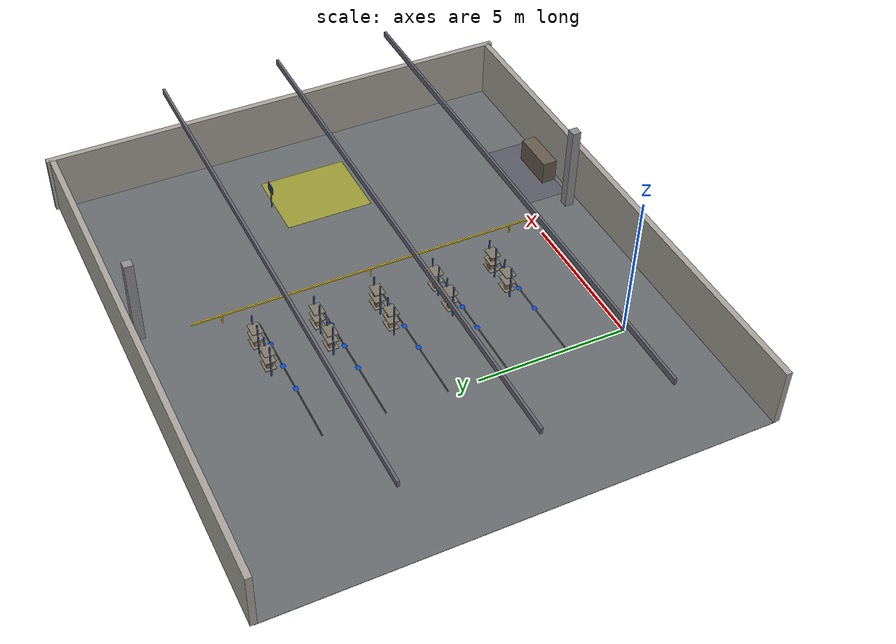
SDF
<sdf version="1.6">
 <world name="atlas_warehouse">
  <model name="floor_main">
   <static>true</static>
   <pose>4 6 -0.01 0 0 0</pose>
   <link name="link">
    <collision name="c"><geometry><box><size>18 16 0.02</size></box></geometry></collision>
    <visual name="v">
     <geometry><box><size>18 16 0.02</size></box></geometry>
     <material>
      <ambient>0.35 0.37 0.38 1</ambient>
      <diffuse>0.4 0.42 0.43 1</diffuse>
      <specular>0.15 0.15 0.15 1</specular>
     </material>
    </visual>
   </link>
  </model>
  <model name="aisle_1">
   <static>true</static>
   <pose>2.5 2 0.001 0 0 0</pose>
   <link name="link">
    <collision name="c"><geometry><box><size>5 0.05 0.002</size></box></geometry></collision>
    <visual name="v">
     <geometry><box><size>5 0.05 0.002</size></box></geometry>
     <material><ambient>0.02 0.02 0.02 1</ambient><diffuse>0.03 0.03 0.03 1</diffuse></material>
    </visual>
   </link>
  </model>
  <model name="aisle_2">
   <static>true</static>
   <pose>2.5 4 0.001 0 0 0</pose>
   <link name="link">
    <collision name="c"><geometry><box><size>5 0.05 0.002</size></box></geometry></collision>
    <visual name="v">
     <geometry><box><size>5 0.05 0.002</size></box></geometry>
     <material><ambient>0.02 0.02 0.02 1</ambient><diffuse>0.03 0.03 0.03 1</diffuse></material>
    </visual>
   </link>
  </model>
  <model name="aisle_3">
   <static>true</static>
   <pose>2.5 6 0.001 0 0 0</pose>
   <link name="link">
    <collision name="c"><geometry><box><size>5 0.05 0.002</size></box></geometry></collision>
    <visual name="v">
     <geometry><box><size>5 0.05 0.002</size></box></geometry>
     <material><ambient>0.02 0.02 0.02 1</ambient><diffuse>0.03 0.03 0.03 1</diffuse></material>
    </visual>
   </link>
  </model>
  <model name="aisle_4">
   <static>true</static>
   <pose>2.5 8 0.001 0 0 0</pose>
   <link name="link">
    <collision name="c"><geometry><box><size>5 0.05 0.002</size></box></geometry></collision>
    <visual name="v">
     <geometry><box><size>5 0.05 0.002</size></box></geometry>
     <material><ambient>0.02 0.02 0.02 1</ambient><diffuse>0.03 0.03 0.03 1</diffuse></material>
    </visual>
   </link>
  </model>
  <model name="aisle_5">
   <static>true</static>
   <pose>2.5 10 0.001 0 0 0</pose>
   <link name="link">
    <collision name="c"><geometry><box><size>5 0.05 0.002</size></box></geometry></collision>
    <visual name="v">
     <geometry><box><size>5 0.05 0.002</size></box></geometry>
     <material><ambient>0.02 0.02 0.02 1</ambient><diffuse>0.03 0.03 0.03 1</diffuse></material>
    </visual>
   </link>
  </model>
  <model name="wall_north">
   <static>true</static>
   <pose>4 14 1.0 0 0 0</pose>
   <link name="link">
    <collision name="c"><geometry><box><size>18 0.2 2.0</size></box></geometry></collision>
    <visual name="v">
     <geometry><box><size>18 0.2 2.0</size></box></geometry>
     <material><ambient>0.6 0.58 0.55 1</ambient><diffuse>0.65 0.63 0.6 1</diffuse></material>
    </visual>
   </link>
  </model>
  <model name="wall_south">
   <static>true</static>
   <pose>4 -2 1.0 0 0 0</pose>
   <link name="link">
    <collision name="c"><geometry><box><size>18 0.2 2.0</size></box></geometry></collision>
    <visual name="v">
     <geometry><box><size>18 0.2 2.0</size></box></geometry>
     <material><ambient>0.6 0.58 0.55 1</ambient><diffuse>0.65 0.63 0.6 1</diffuse></material>
    </visual>
   </link>
  </model>
  <model name="wall_east">
   <static>true</static>
   <pose>13 6 1.0 0 0 0</pose>
   <link name="link">
    <collision name="c"><geometry><box><size>0.2 16.4 2.0</size></box></geometry></collision>
    <visual name="v">
     <geometry><box><size>0.2 16.4 2.0</size></box></geometry>
     <material><ambient>0.6 0.58 0.55 1</ambient><diffuse>0.65 0.63 0.6 1</diffuse></material>
    </visual>
   </link>
  </model>
  <model name="col_2">
   <static>true</static>
   <pose>6 -1.5 1.5 0 0 0</pose>
   <link name="link">
    <collision name="c"><geometry><box><size>0.3 0.3 3.0</size></box></geometry></collision>
    <visual name="v">
     <geometry><box><size>0.3 0.3 3.0</size></box></geometry>
     <material><ambient>0.5 0.5 0.52 1</ambient><diffuse>0.55 0.55 0.57 1</diffuse></material>
    </visual>
   </link>
  </model>
  <model name="col_4">
   <static>true</static>
   <pose>6 13.5 1.5 0 0 0</pose>
   <link name="link">
    <collision name="c"><geometry><box><size>0.3 0.3 3.0</size></box></geometry></collision>
    <visual name="v">
     <geometry><box><size>0.3 0.3 3.0</size></box></geometry>
     <material><ambient>0.5 0.5 0.52 1</ambient><diffuse>0.55 0.55 0.57 1</diffuse></material>
    </visual>
   </link>
  </model>
  <model name="truss_1">
   <static>true</static>
   <pose>4 2 3.5 0 0 0</pose>
   <link name="link">
    <visual name="v">
     <geometry><box><size>18 0.08 0.2</size></box></geometry>
     <material>
      <ambient>0.3 0.3 0.35 1</ambient>
      <diffuse>0.4 0.4 0.45 1</diffuse>
      <specular>0.2 0.2 0.2 1</specular>
     </material>
    </visual>
   </link>
  </model>
  <model name="truss_2">
   <static>true</static>
   <pose>4 6 3.5 0 0 0</pose>
   <link name="link">
    <visual name="v">
     <geometry><box><size>18 0.08 0.2</size></box></geometry>
     <material>
      <ambient>0.3 0.3 0.35 1</ambient>
      <diffuse>0.4 0.4 0.45 1</diffuse>
      <specular>0.2 0.2 0.2 1</specular>
     </material>
    </visual>
   </link>
  </model>
  <model name="truss_3">
   <static>true</static>
   <pose>4 10 3.5 0 0 0</pose>
   <link name="link">
    <visual name="v">
     <geometry><box><size>18 0.08 0.2</size></box></geometry>
     <material>
      <ambient>0.3 0.3 0.35 1</ambient>
      <diffuse>0.4 0.4 0.45 1</diffuse>
      <specular>0.2 0.2 0.2 1</specular>
     </material>
    </visual>
   </link>
  </model>
  <model name="rack_A1_S03">
   <static>true</static>
   <pose>3.0 2.45 0.0 0 0 0</pose>
   <link name="link">
    <visual name="uL">
     <pose>-0.22 0 0.6 0 0 0</pose>
     <geometry><box><size>0.04 0.04 1.2</size></box></geometry>
     <material>
      <ambient>0.2 0.35 0.6 1</ambient>
      <diffuse>0.25 0.4 0.7 1</diffuse>
      <specular>0.3 0.3 0.3 1</specular>
     </material>
    </visual>
    <visual name="uR">
     <pose>0.22 0 0.6 0 0 0</pose>
     <geometry><box><size>0.04 0.04 1.2</size></box></geometry>
     <material>
      <ambient>0.2 0.35 0.6 1</ambient>
      <diffuse>0.25 0.4 0.7 1</diffuse>
      <specular>0.3 0.3 0.3 1</specular>
     </material>
    </visual>
    <visual name="s1">
     <pose>0 0 0.25 0 0 0</pose>
     <geometry><box><size>0.48 0.35 0.02</size></box></geometry>
     <material><ambient>0.45 0.42 0.35 1</ambient><diffuse>0.5 0.47 0.4 1</diffuse></material>
    </visual>
    <visual name="s2">
     <pose>0 0 0.55 0 0 0</pose>
     <geometry><box><size>0.48 0.35 0.02</size></box></geometry>
     <material><ambient>0.45 0.42 0.35 1</ambient><diffuse>0.5 0.47 0.4 1</diffuse></material>
    </visual>
    <visual name="s3">
     <pose>0 0 0.85 0 0 0</pose>
     <geometry><box><size>0.48 0.35 0.02</size></box></geometry>
     <material><ambient>0.45 0.42 0.35 1</ambient><diffuse>0.5 0.47 0.4 1</diffuse></material>
    </visual>
    <visual name="b1">
     <pose>-0.05 0 0.33 0 0 0</pose>
     <geometry><box><size>0.18 0.2 0.14</size></box></geometry>
     <material><ambient>0.55 0.45 0.3 1</ambient><diffuse>0.6 0.5 0.35 1</diffuse></material>
    </visual>
    <visual name="lbl">
     <pose>0 0.18 0.5 0 0 0</pose>
     <geometry><box><size>0.12 0.005 0.06</size></box></geometry>
     <material><ambient>0.95 0.95 0.95 1</ambient><diffuse>1.0 1.0 1.0 1</diffuse></material>
    </visual>
    <collision name="c">
     <pose>0 0 0.6 0 0 0</pose>
     <geometry><box><size>0.5 0.36 1.2</size></box></geometry>
    </collision>
   </link>
  </model>
  <model name="rack_A1_S04">
   <static>true</static>
   <pose>4.0 2.45 0.0 0 0 0</pose>
   <link name="link">
    <visual name="uL">
     <pose>-0.22 0 0.6 0 0 0</pose>
     <geometry><box><size>0.04 0.04 1.2</size></box></geometry>
     <material>
      <ambient>0.2 0.35 0.6 1</ambient>
      <diffuse>0.25 0.4 0.7 1</diffuse>
      <specular>0.3 0.3 0.3 1</specular>
     </material>
    </visual>
    <visual name="uR">
     <pose>0.22 0 0.6 0 0 0</pose>
     <geometry><box><size>0.04 0.04 1.2</size></box></geometry>
     <material>
      <ambient>0.2 0.35 0.6 1</ambient>
      <diffuse>0.25 0.4 0.7 1</diffuse>
      <specular>0.3 0.3 0.3 1</specular>
     </material>
    </visual>
    <visual name="s1">
     <pose>0 0 0.25 0 0 0</pose>
     <geometry><box><size>0.48 0.35 0.02</size></box></geometry>
     <material><ambient>0.45 0.42 0.35 1</ambient><diffuse>0.5 0.47 0.4 1</diffuse></material>
    </visual>
    <visual name="s2">
     <pose>0 0 0.55 0 0 0</pose>
     <geometry><box><size>0.48 0.35 0.02</size></box></geometry>
     <material><ambient>0.45 0.42 0.35 1</ambient><diffuse>0.5 0.47 0.4 1</diffuse></material>
    </visual>
    <visual name="s3">
     <pose>0 0 0.85 0 0 0</pose>
     <geometry><box><size>0.48 0.35 0.02</size></box></geometry>
     <material><ambient>0.45 0.42 0.35 1</ambient><diffuse>0.5 0.47 0.4 1</diffuse></material>
    </visual>
    <visual name="b1">
     <pose>0.0 0 0.33 0 0 0</pose>
     <geometry><box><size>0.2 0.25 0.14</size></box></geometry>
     <material><ambient>0.45 0.35 0.2 1</ambient><diffuse>0.55 0.45 0.25 1</diffuse></material>
    </visual>
    <visual name="b2">
     <pose>0.0 0 0.63 0 0 0</pose>
     <geometry><box><size>0.15 0.15 0.12</size></box></geometry>
     <material><ambient>0.6 0.3 0.2 1</ambient><diffuse>0.7 0.35 0.25 1</diffuse></material>
    </visual>
    <visual name="lbl">
     <pose>0 0.18 0.5 0 0 0</pose>
     <geometry><box><size>0.12 0.005 0.06</size></box></geometry>
     <material><ambient>0.95 0.95 0.95 1</ambient><diffuse>1.0 1.0 1.0 1</diffuse></material>
    </visual>
    <collision name="c">
     <pose>0 0 0.6 0 0 0</pose>
     <geometry><box><size>0.5 0.36 1.2</size></box></geometry>
    </collision>
   </link>
  </model>
  <model name="rack_A2_S07">
   <static>true</static>
   <pose>3.0 4.45 0.0 0 0 0</pose>
   <link name="link">
    <visual name="uL">
     <pose>-0.22 0 0.6 0 0 0</pose>
     <geometry><box><size>0.04 0.04 1.2</size></box></geometry>
     <material>
      <ambient>0.2 0.35 0.6 1</ambient>
      <diffuse>0.25 0.4 0.7 1</diffuse>
      <specular>0.3 0.3 0.3 1</specular>
     </material>
    </visual>
    <visual name="uR">
     <pose>0.22 0 0.6 0 0 0</pose>
     <geometry><box><size>0.04 0.04 1.2</size></box></geometry>
     <material>
      <ambient>0.2 0.35 0.6 1</ambient>
      <diffuse>0.25 0.4 0.7 1</diffuse>
      <specular>0.3 0.3 0.3 1</specular>
     </material>
    </visual>
    <visual name="s1">
     <pose>0 0 0.25 0 0 0</pose>
     <geometry><box><size>0.48 0.35 0.02</size></box></geometry>
     <material><ambient>0.45 0.42 0.35 1</ambient><diffuse>0.5 0.47 0.4 1</diffuse></material>
    </visual>
    <visual name="s2">
     <pose>0 0 0.55 0 0 0</pose>
     <geometry><box><size>0.48 0.35 0.02</size></box></geometry>
     <material><ambient>0.45 0.42 0.35 1</ambient><diffuse>0.5 0.47 0.4 1</diffuse></material>
    </visual>
    <visual name="s3">
     <pose>0 0 0.85 0 0 0</pose>
     <geometry><box><size>0.48 0.35 0.02</size></box></geometry>
     <material><ambient>0.45 0.42 0.35 1</ambient><diffuse>0.5 0.47 0.4 1</diffuse></material>
    </visual>
    <visual name="b1">
     <pose>-0.05 0 0.33 0 0 0</pose>
     <geometry><box><size>0.16 0.2 0.14</size></box></geometry>
     <material><ambient>0.5 0.4 0.2 1</ambient><diffuse>0.6 0.45 0.25 1</diffuse></material>
    </visual>
    <visual name="b2">
     <pose>0.08 0 0.63 0 0 0</pose>
     <geometry><box><size>0.14 0.18 0.12</size></box></geometry>
     <material>
      <ambient>0.4 0.35000000000000003 0.15000000000000002 1</ambient>
      <diffuse>0.5 0.4 0.2 1</diffuse>
     </material>
    </visual>
    <visual name="lbl">
     <pose>0 0.18 0.5 0 0 0</pose>
     <geometry><box><size>0.12 0.005 0.06</size></box></geometry>
     <material><ambient>0.95 0.95 0.95 1</ambient><diffuse>1.0 1.0 1.0 1</diffuse></material>
    </visual>
    <collision name="c">
     <pose>0 0 0.6 0 0 0</pose>
     <geometry><box><size>0.5 0.36 1.2</size></box></geometry>
    </collision>
   </link>
  </model>
  <model name="rack_A2_S08">
   <static>true</static>
   <pose>4.0 4.45 0.0 0 0 0</pose>
   <link name="link">
    <visual name="uL">
     <pose>-0.22 0 0.6 0 0 0</pose>
     <geometry><box><size>0.04 0.04 1.2</size></box></geometry>
     <material>
      <ambient>0.2 0.35 0.6 1</ambient>
      <diffuse>0.25 0.4 0.7 1</diffuse>
      <specular>0.3 0.3 0.3 1</specular>
     </material>
    </visual>
    <visual name="uR">
     <pose>0.22 0 0.6 0 0 0</pose>
     <geometry><box><size>0.04 0.04 1.2</size></box></geometry>
     <material>
      <ambient>0.2 0.35 0.6 1</ambient>
      <diffuse>0.25 0.4 0.7 1</diffuse>
      <specular>0.3 0.3 0.3 1</specular>
     </material>
    </visual>
    <visual name="s1">
     <pose>0 0 0.25 0 0 0</pose>
     <geometry><box><size>0.48 0.35 0.02</size></box></geometry>
     <material><ambient>0.45 0.42 0.35 1</ambient><diffuse>0.5 0.47 0.4 1</diffuse></material>
    </visual>
    <visual name="s2">
     <pose>0 0 0.55 0 0 0</pose>
     <geometry><box><size>0.48 0.35 0.02</size></box></geometry>
     <material><ambient>0.45 0.42 0.35 1</ambient><diffuse>0.5 0.47 0.4 1</diffuse></material>
    </visual>
    <visual name="s3">
     <pose>0 0 0.85 0 0 0</pose>
     <geometry><box><size>0.48 0.35 0.02</size></box></geometry>
     <material><ambient>0.45 0.42 0.35 1</ambient><diffuse>0.5 0.47 0.4 1</diffuse></material>
    </visual>
    <visual name="b1">
     <pose>-0.05 0 0.33 0 0 0</pose>
     <geometry><box><size>0.16 0.2 0.14</size></box></geometry>
     <material><ambient>0.7 0.6 0.4 1</ambient><diffuse>0.7999999999999999 0.65 0.45 1</diffuse></material>
    </visual>
    <visual name="b2">
     <pose>0.08 0 0.63 0 0 0</pose>
     <geometry><box><size>0.14 0.18 0.12</size></box></geometry>
     <material>
      <ambient>0.6 0.5499999999999999 0.35000000000000003 1</ambient>
      <diffuse>0.7 0.6 0.4 1</diffuse>
     </material>
    </visual>
    <visual name="lbl">
     <pose>0 0.18 0.5 0 0 0</pose>
     <geometry><box><size>0.12 0.005 0.06</size></box></geometry>
     <material><ambient>0.95 0.95 0.95 1</ambient><diffuse>1.0 1.0 1.0 1</diffuse></material>
    </visual>
    <collision name="c">
     <pose>0 0 0.6 0 0 0</pose>
     <geometry><box><size>0.5 0.36 1.2</size></box></geometry>
    </collision>
   </link>
  </model>
  <model name="rack_A3_S11">
   <static>true</static>
   <pose>3.0 6.45 0.0 0 0 0</pose>
   <link name="link">
    <visual name="uL">
     <pose>-0.22 0 0.6 0 0 0</pose>
     <geometry><box><size>0.04 0.04 1.2</size></box></geometry>
     <material>
      <ambient>0.2 0.35 0.6 1</ambient>
      <diffuse>0.25 0.4 0.7 1</diffuse>
      <specular>0.3 0.3 0.3 1</specular>
     </material>
    </visual>
    <visual name="uR">
     <pose>0.22 0 0.6 0 0 0</pose>
     <geometry><box><size>0.04 0.04 1.2</size></box></geometry>
     <material>
      <ambient>0.2 0.35 0.6 1</ambient>
      <diffuse>0.25 0.4 0.7 1</diffuse>
      <specular>0.3 0.3 0.3 1</specular>
     </material>
    </visual>
    <visual name="s1">
     <pose>0 0 0.25 0 0 0</pose>
     <geometry><box><size>0.48 0.35 0.02</size></box></geometry>
     <material><ambient>0.45 0.42 0.35 1</ambient><diffuse>0.5 0.47 0.4 1</diffuse></material>
    </visual>
    <visual name="s2">
     <pose>0 0 0.55 0 0 0</pose>
     <geometry><box><size>0.48 0.35 0.02</size></box></geometry>
     <material><ambient>0.45 0.42 0.35 1</ambient><diffuse>0.5 0.47 0.4 1</diffuse></material>
    </visual>
    <visual name="s3">
     <pose>0 0 0.85 0 0 0</pose>
     <geometry><box><size>0.48 0.35 0.02</size></box></geometry>
     <material><ambient>0.45 0.42 0.35 1</ambient><diffuse>0.5 0.47 0.4 1</diffuse></material>
    </visual>
    <visual name="b1">
     <pose>-0.05 0 0.33 0 0 0</pose>
     <geometry><box><size>0.16 0.2 0.14</size></box></geometry>
     <material><ambient>0.6 0.5 0.3 1</ambient><diffuse>0.7 0.55 0.35 1</diffuse></material>
    </visual>
    <visual name="b2">
     <pose>0.08 0 0.63 0 0 0</pose>
     <geometry><box><size>0.14 0.18 0.12</size></box></geometry>
     <material><ambient>0.5 0.45 0.25 1</ambient><diffuse>0.6 0.5 0.3 1</diffuse></material>
    </visual>
    <visual name="lbl">
     <pose>0 0.18 0.5 0 0 0</pose>
     <geometry><box><size>0.12 0.005 0.06</size></box></geometry>
     <material><ambient>0.95 0.95 0.95 1</ambient><diffuse>1.0 1.0 1.0 1</diffuse></material>
    </visual>
    <collision name="c">
     <pose>0 0 0.6 0 0 0</pose>
     <geometry><box><size>0.5 0.36 1.2</size></box></geometry>
    </collision>
   </link>
  </model>
  <model name="rack_A3_S12">
   <static>true</static>
   <pose>4.0 6.45 0.0 0 0 0</pose>
   <link name="link">
    <visual name="uL">
     <pose>-0.22 0 0.6 0 0 0</pose>
     <geometry><box><size>0.04 0.04 1.2</size></box></geometry>
     <material>
      <ambient>0.2 0.35 0.6 1</ambient>
      <diffuse>0.25 0.4 0.7 1</diffuse>
      <specular>0.3 0.3 0.3 1</specular>
     </material>
    </visual>
    <visual name="uR">
     <pose>0.22 0 0.6 0 0 0</pose>
     <geometry><box><size>0.04 0.04 1.2</size></box></geometry>
     <material>
      <ambient>0.2 0.35 0.6 1</ambient>
      <diffuse>0.25 0.4 0.7 1</diffuse>
      <specular>0.3 0.3 0.3 1</specular>
     </material>
    </visual>
    <visual name="s1">
     <pose>0 0 0.25 0 0 0</pose>
     <geometry><box><size>0.48 0.35 0.02</size></box></geometry>
     <material><ambient>0.45 0.42 0.35 1</ambient><diffuse>0.5 0.47 0.4 1</diffuse></material>
    </visual>
    <visual name="s2">
     <pose>0 0 0.55 0 0 0</pose>
     <geometry><box><size>0.48 0.35 0.02</size></box></geometry>
     <material><ambient>0.45 0.42 0.35 1</ambient><diffuse>0.5 0.47 0.4 1</diffuse></material>
    </visual>
    <visual name="s3">
     <pose>0 0 0.85 0 0 0</pose>
     <geometry><box><size>0.48 0.35 0.02</size></box></geometry>
     <material><ambient>0.45 0.42 0.35 1</ambient><diffuse>0.5 0.47 0.4 1</diffuse></material>
    </visual>
    <visual name="b1">
     <pose>-0.05 0 0.33 0 0 0</pose>
     <geometry><box><size>0.16 0.2 0.14</size></box></geometry>
     <material><ambient>0.5 0.4 0.2 1</ambient><diffuse>0.6 0.45 0.25 1</diffuse></material>
    </visual>
    <visual name="b2">
     <pose>0.08 0 0.63 0 0 0</pose>
     <geometry><box><size>0.14 0.18 0.12</size></box></geometry>
     <material>
      <ambient>0.4 0.35000000000000003 0.15000000000000002 1</ambient>
      <diffuse>0.5 0.4 0.2 1</diffuse>
     </material>
    </visual>
    <visual name="lbl">
     <pose>0 0.18 0.5 0 0 0</pose>
     <geometry><box><size>0.12 0.005 0.06</size></box></geometry>
     <material><ambient>0.95 0.95 0.95 1</ambient><diffuse>1.0 1.0 1.0 1</diffuse></material>
    </visual>
    <collision name="c">
     <pose>0 0 0.6 0 0 0</pose>
     <geometry><box><size>0.5 0.36 1.2</size></box></geometry>
    </collision>
   </link>
  </model>
  <model name="rack_A4_S15">
   <static>true</static>
   <pose>3.0 8.45 0.0 0 0 0</pose>
   <link name="link">
    <visual name="uL">
     <pose>-0.22 0 0.6 0 0 0</pose>
     <geometry><box><size>0.04 0.04 1.2</size></box></geometry>
     <material>
      <ambient>0.2 0.35 0.6 1</ambient>
      <diffuse>0.25 0.4 0.7 1</diffuse>
      <specular>0.3 0.3 0.3 1</specular>
     </material>
    </visual>
    <visual name="uR">
     <pose>0.22 0 0.6 0 0 0</pose>
     <geometry><box><size>0.04 0.04 1.2</size></box></geometry>
     <material>
      <ambient>0.2 0.35 0.6 1</ambient>
      <diffuse>0.25 0.4 0.7 1</diffuse>
      <specular>0.3 0.3 0.3 1</specular>
     </material>
    </visual>
    <visual name="s1">
     <pose>0 0 0.25 0 0 0</pose>
     <geometry><box><size>0.48 0.35 0.02</size></box></geometry>
     <material><ambient>0.45 0.42 0.35 1</ambient><diffuse>0.5 0.47 0.4 1</diffuse></material>
    </visual>
    <visual name="s2">
     <pose>0 0 0.55 0 0 0</pose>
     <geometry><box><size>0.48 0.35 0.02</size></box></geometry>
     <material><ambient>0.45 0.42 0.35 1</ambient><diffuse>0.5 0.47 0.4 1</diffuse></material>
    </visual>
    <visual name="s3">
     <pose>0 0 0.85 0 0 0</pose>
     <geometry><box><size>0.48 0.35 0.02</size></box></geometry>
     <material><ambient>0.45 0.42 0.35 1</ambient><diffuse>0.5 0.47 0.4 1</diffuse></material>
    </visual>
    <visual name="b1">
     <pose>-0.05 0 0.33 0 0 0</pose>
     <geometry><box><size>0.16 0.2 0.14</size></box></geometry>
     <material><ambient>0.55 0.45 0.3 1</ambient><diffuse>0.65 0.5 0.35 1</diffuse></material>
    </visual>
    <visual name="b2">
     <pose>0.08 0 0.63 0 0 0</pose>
     <geometry><box><size>0.14 0.18 0.12</size></box></geometry>
     <material><ambient>0.45000000000000007 0.4 0.25 1</ambient><diffuse>0.55 0.45 0.3 1</diffuse></material>
    </visual>
    <visual name="lbl">
     <pose>0 0.18 0.5 0 0 0</pose>
     <geometry><box><size>0.12 0.005 0.06</size></box></geometry>
     <material><ambient>0.95 0.95 0.95 1</ambient><diffuse>1.0 1.0 1.0 1</diffuse></material>
    </visual>
    <collision name="c">
     <pose>0 0 0.6 0 0 0</pose>
     <geometry><box><size>0.5 0.36 1.2</size></box></geometry>
    </collision>
   </link>
  </model>
  <model name="rack_A4_S16">
   <static>true</static>
   <pose>4.0 8.45 0.0 0 0 0</pose>
   <link name="link">
    <visual name="uL">
     <pose>-0.22 0 0.6 0 0 0</pose>
     <geometry><box><size>0.04 0.04 1.2</size></box></geometry>
     <material>
      <ambient>0.2 0.35 0.6 1</ambient>
      <diffuse>0.25 0.4 0.7 1</diffuse>
      <specular>0.3 0.3 0.3 1</specular>
     </material>
    </visual>
    <visual name="uR">
     <pose>0.22 0 0.6 0 0 0</pose>
     <geometry><box><size>0.04 0.04 1.2</size></box></geometry>
     <material>
      <ambient>0.2 0.35 0.6 1</ambient>
      <diffuse>0.25 0.4 0.7 1</diffuse>
      <specular>0.3 0.3 0.3 1</specular>
     </material>
    </visual>
    <visual name="s1">
     <pose>0 0 0.25 0 0 0</pose>
     <geometry><box><size>0.48 0.35 0.02</size></box></geometry>
     <material><ambient>0.45 0.42 0.35 1</ambient><diffuse>0.5 0.47 0.4 1</diffuse></material>
    </visual>
    <visual name="s2">
     <pose>0 0 0.55 0 0 0</pose>
     <geometry><box><size>0.48 0.35 0.02</size></box></geometry>
     <material><ambient>0.45 0.42 0.35 1</ambient><diffuse>0.5 0.47 0.4 1</diffuse></material>
    </visual>
    <visual name="s3">
     <pose>0 0 0.85 0 0 0</pose>
     <geometry><box><size>0.48 0.35 0.02</size></box></geometry>
     <material><ambient>0.45 0.42 0.35 1</ambient><diffuse>0.5 0.47 0.4 1</diffuse></material>
    </visual>
    <visual name="b1">
     <pose>-0.05 0 0.33 0 0 0</pose>
     <geometry><box><size>0.16 0.2 0.14</size></box></geometry>
     <material><ambient>0.6 0.5 0.3 1</ambient><diffuse>0.7 0.55 0.35 1</diffuse></material>
    </visual>
    <visual name="b2">
     <pose>0.08 0 0.63 0 0 0</pose>
     <geometry><box><size>0.14 0.18 0.12</size></box></geometry>
     <material><ambient>0.5 0.45 0.25 1</ambient><diffuse>0.6 0.5 0.3 1</diffuse></material>
    </visual>
    <visual name="lbl">
     <pose>0 0.18 0.5 0 0 0</pose>
     <geometry><box><size>0.12 0.005 0.06</size></box></geometry>
     <material><ambient>0.95 0.95 0.95 1</ambient><diffuse>1.0 1.0 1.0 1</diffuse></material>
    </visual>
    <collision name="c">
     <pose>0 0 0.6 0 0 0</pose>
     <geometry><box><size>0.5 0.36 1.2</size></box></geometry>
    </collision>
   </link>
  </model>
  <model name="rack_A5_S19">
   <static>true</static>
   <pose>3.0 10.45 0.0 0 0 0</pose>
   <link name="link">
    <visual name="uL">
     <pose>-0.22 0 0.6 0 0 0</pose>
     <geometry><box><size>0.04 0.04 1.2</size></box></geometry>
     <material>
      <ambient>0.2 0.35 0.6 1</ambient>
      <diffuse>0.25 0.4 0.7 1</diffuse>
      <specular>0.3 0.3 0.3 1</specular>
     </material>
    </visual>
    <visual name="uR">
     <pose>0.22 0 0.6 0 0 0</pose>
     <geometry><box><size>0.04 0.04 1.2</size></box></geometry>
     <material>
      <ambient>0.2 0.35 0.6 1</ambient>
      <diffuse>0.25 0.4 0.7 1</diffuse>
      <specular>0.3 0.3 0.3 1</specular>
     </material>
    </visual>
    <visual name="s1">
     <pose>0 0 0.25 0 0 0</pose>
     <geometry><box><size>0.48 0.35 0.02</size></box></geometry>
     <material><ambient>0.45 0.42 0.35 1</ambient><diffuse>0.5 0.47 0.4 1</diffuse></material>
    </visual>
    <visual name="s2">
     <pose>0 0 0.55 0 0 0</pose>
     <geometry><box><size>0.48 0.35 0.02</size></box></geometry>
     <material><ambient>0.45 0.42 0.35 1</ambient><diffuse>0.5 0.47 0.4 1</diffuse></material>
    </visual>
    <visual name="s3">
     <pose>0 0 0.85 0 0 0</pose>
     <geometry><box><size>0.48 0.35 0.02</size></box></geometry>
     <material><ambient>0.45 0.42 0.35 1</ambient><diffuse>0.5 0.47 0.4 1</diffuse></material>
    </visual>
    <visual name="b1">
     <pose>-0.05 0 0.33 0 0 0</pose>
     <geometry><box><size>0.16 0.2 0.14</size></box></geometry>
     <material><ambient>0.45 0.35 0.2 1</ambient><diffuse>0.55 0.39999999999999997 0.25 1</diffuse></material>
    </visual>
    <visual name="b2">
     <pose>0.08 0 0.63 0 0 0</pose>
     <geometry><box><size>0.14 0.18 0.12</size></box></geometry>
     <material><ambient>0.35 0.3 0.15000000000000002 1</ambient><diffuse>0.45 0.35 0.2 1</diffuse></material>
    </visual>
    <visual name="lbl">
     <pose>0 0.18 0.5 0 0 0</pose>
     <geometry><box><size>0.12 0.005 0.06</size></box></geometry>
     <material><ambient>0.95 0.95 0.95 1</ambient><diffuse>1.0 1.0 1.0 1</diffuse></material>
    </visual>
    <collision name="c">
     <pose>0 0 0.6 0 0 0</pose>
     <geometry><box><size>0.5 0.36 1.2</size></box></geometry>
    </collision>
   </link>
  </model>
  <model name="rack_A5_S20">
   <static>true</static>
   <pose>4.0 10.45 0.0 0 0 0</pose>
   <link name="link">
    <visual name="uL">
     <pose>-0.22 0 0.6 0 0 0</pose>
     <geometry><box><size>0.04 0.04 1.2</size></box></geometry>
     <material>
      <ambient>0.2 0.35 0.6 1</ambient>
      <diffuse>0.25 0.4 0.7 1</diffuse>
      <specular>0.3 0.3 0.3 1</specular>
     </material>
    </visual>
    <visual name="uR">
     <pose>0.22 0 0.6 0 0 0</pose>
     <geometry><box><size>0.04 0.04 1.2</size></box></geometry>
     <material>
      <ambient>0.2 0.35 0.6 1</ambient>
      <diffuse>0.25 0.4 0.7 1</diffuse>
      <specular>0.3 0.3 0.3 1</specular>
     </material>
    </visual>
    <visual name="s1">
     <pose>0 0 0.25 0 0 0</pose>
     <geometry><box><size>0.48 0.35 0.02</size></box></geometry>
     <material><ambient>0.45 0.42 0.35 1</ambient><diffuse>0.5 0.47 0.4 1</diffuse></material>
    </visual>
    <visual name="s2">
     <pose>0 0 0.55 0 0 0</pose>
     <geometry><box><size>0.48 0.35 0.02</size></box></geometry>
     <material><ambient>0.45 0.42 0.35 1</ambient><diffuse>0.5 0.47 0.4 1</diffuse></material>
    </visual>
    <visual name="s3">
     <pose>0 0 0.85 0 0 0</pose>
     <geometry><box><size>0.48 0.35 0.02</size></box></geometry>
     <material><ambient>0.45 0.42 0.35 1</ambient><diffuse>0.5 0.47 0.4 1</diffuse></material>
    </visual>
    <visual name="b1">
     <pose>-0.05 0 0.33 0 0 0</pose>
     <geometry><box><size>0.16 0.2 0.14</size></box></geometry>
     <material><ambient>0.55 0.45 0.3 1</ambient><diffuse>0.65 0.5 0.35 1</diffuse></material>
    </visual>
    <visual name="b2">
     <pose>0.08 0 0.63 0 0 0</pose>
     <geometry><box><size>0.14 0.18 0.12</size></box></geometry>
     <material><ambient>0.45000000000000007 0.4 0.25 1</ambient><diffuse>0.55 0.45 0.3 1</diffuse></material>
    </visual>
    <visual name="lbl">
     <pose>0 0.18 0.5 0 0 0</pose>
     <geometry><box><size>0.12 0.005 0.06</size></box></geometry>
     <material><ambient>0.95 0.95 0.95 1</ambient><diffuse>1.0 1.0 1.0 1</diffuse></material>
    </visual>
    <collision name="c">
     <pose>0 0 0.6 0 0 0</pose>
     <geometry><box><size>0.5 0.36 1.2</size></box></geometry>
    </collision>
   </link>
  </model>
  <model name="guardrail_1">
   <static>true</static>
   <pose>5.5 6 0.3 0 0 0</pose>
   <link name="link">
    <visual name="rail">
     <geometry><box><size>0.04 12 0.04</size></box></geometry>
     <material><ambient>0.85 0.7 0.0 1</ambient><diffuse>0.95 0.8 0.0 1</diffuse></material>
    </visual>
    <visual name="post1">
     <pose>0 -5 -0.15 0 0 0</pose>
     <geometry><cylinder><radius>0.025</radius><length>0.3</length></cylinder></geometry>
     <material><ambient>0.85 0.7 0.0 1</ambient><diffuse>0.95 0.8 0.0 1</diffuse></material>
    </visual>
    <visual name="post2">
     <pose>0 0 -0.15 0 0 0</pose>
     <geometry><cylinder><radius>0.025</radius><length>0.3</length></cylinder></geometry>
     <material><ambient>0.85 0.7 0.0 1</ambient><diffuse>0.95 0.8 0.0 1</diffuse></material>
    </visual>
    <visual name="post3">
     <pose>0 5 -0.15 0 0 0</pose>
     <geometry><cylinder><radius>0.025</radius><length>0.3</length></cylinder></geometry>
     <material><ambient>0.85 0.7 0.0 1</ambient><diffuse>0.95 0.8 0.0 1</diffuse></material>
    </visual>
   </link>
  </model>
  <model name="rfid_pad_02">
   <static>true</static>
   <pose>2.0 2 0.002 0 0 0</pose>
   <link name="link">
    <visual name="v">
     <geometry><box><size>0.15 0.15 0.002</size></box></geometry>
     <material>
      <ambient>0.0 0.2 0.7 1</ambient>
      <diffuse>0.0 0.3 0.9 1</diffuse>
      <emissive>0.0 0.05 0.2 1</emissive>
     </material>
    </visual>
   </link>
  </model>
  <model name="rfid_pad_03">
   <static>true</static>
   <pose>3.0 2 0.002 0 0 0</pose>
   <link name="link">
    <visual name="v">
     <geometry><box><size>0.15 0.15 0.002</size></box></geometry>
     <material>
      <ambient>0.0 0.2 0.7 1</ambient>
      <diffuse>0.0 0.3 0.9 1</diffuse>
      <emissive>0.0 0.05 0.2 1</emissive>
     </material>
    </visual>
   </link>
  </model>
  <model name="rfid_pad_04">
   <static>true</static>
   <pose>4.0 2 0.002 0 0 0</pose>
   <link name="link">
    <visual name="v">
     <geometry><box><size>0.15 0.15 0.002</size></box></geometry>
     <material>
      <ambient>0.0 0.2 0.7 1</ambient>
      <diffuse>0.0 0.3 0.9 1</diffuse>
      <emissive>0.0 0.05 0.2 1</emissive>
     </material>
    </visual>
   </link>
  </model>
  <model name="rfid_pad_06">
   <static>true</static>
   <pose>2.0 4 0.002 0 0 0</pose>
   <link name="link">
    <visual name="v">
     <geometry><box><size>0.15 0.15 0.002</size></box></geometry>
     <material>
      <ambient>0.0 0.2 0.7 1</ambient>
      <diffuse>0.0 0.3 0.9 1</diffuse>
      <emissive>0.0 0.05 0.2 1</emissive>
     </material>
    </visual>
   </link>
  </model>
  <model name="rfid_pad_07">
   <static>true</static>
   <pose>3.0 4 0.002 0 0 0</pose>
   <link name="link">
    <visual name="v">
     <geometry><box><size>0.15 0.15 0.002</size></box></geometry>
     <material>
      <ambient>0.0 0.2 0.7 1</ambient>
      <diffuse>0.0 0.3 0.9 1</diffuse>
      <emissive>0.0 0.05 0.2 1</emissive>
     </material>
    </visual>
   </link>
  </model>
  <model name="rfid_pad_08">
   <static>true</static>
   <pose>4.0 4 0.002 0 0 0</pose>
   <link name="link">
    <visual name="v">
     <geometry><box><size>0.15 0.15 0.002</size></box></geometry>
     <material>
      <ambient>0.0 0.2 0.7 1</ambient>
      <diffuse>0.0 0.3 0.9 1</diffuse>
      <emissive>0.0 0.05 0.2 1</emissive>
     </material>
    </visual>
   </link>
  </model>
  <model name="rfid_pad_10">
   <static>true</static>
   <pose>2.0 6 0.002 0 0 0</pose>
   <link name="link">
    <visual name="v">
     <geometry><box><size>0.15 0.15 0.002</size></box></geometry>
     <material>
      <ambient>0.0 0.2 0.7 1</ambient>
      <diffuse>0.0 0.3 0.9 1</diffuse>
      <emissive>0.0 0.05 0.2 1</emissive>
     </material>
    </visual>
   </link>
  </model>
  <model name="rfid_pad_11">
   <static>true</static>
   <pose>3.0 6 0.002 0 0 0</pose>
   <link name="link">
    <visual name="v">
     <geometry><box><size>0.15 0.15 0.002</size></box></geometry>
     <material>
      <ambient>0.0 0.2 0.7 1</ambient>
      <diffuse>0.0 0.3 0.9 1</diffuse>
      <emissive>0.0 0.05 0.2 1</emissive>
     </material>
    </visual>
   </link>
  </model>
  <model name="rfid_pad_12">
   <static>true</static>
   <pose>4.0 6 0.002 0 0 0</pose>
   <link name="link">
    <visual name="v">
     <geometry><box><size>0.15 0.15 0.002</size></box></geometry>
     <material>
      <ambient>0.0 0.2 0.7 1</ambient>
      <diffuse>0.0 0.3 0.9 1</diffuse>
      <emissive>0.0 0.05 0.2 1</emissive>
     </material>
    </visual>
   </link>
  </model>
  <model name="rfid_pad_14">
   <static>true</static>
   <pose>2.0 8 0.002 0 0 0</pose>
   <link name="link">
    <visual name="v">
     <geometry><box><size>0.15 0.15 0.002</size></box></geometry>
     <material>
      <ambient>0.0 0.2 0.7 1</ambient>
      <diffuse>0.0 0.3 0.9 1</diffuse>
      <emissive>0.0 0.05 0.2 1</emissive>
     </material>
    </visual>
   </link>
  </model>
  <model name="rfid_pad_15">
   <static>true</static>
   <pose>3.0 8 0.002 0 0 0</pose>
   <link name="link">
    <visual name="v">
     <geometry><box><size>0.15 0.15 0.002</size></box></geometry>
     <material>
      <ambient>0.0 0.2 0.7 1</ambient>
      <diffuse>0.0 0.3 0.9 1</diffuse>
      <emissive>0.0 0.05 0.2 1</emissive>
     </material>
    </visual>
   </link>
  </model>
  <model name="rfid_pad_16">
   <static>true</static>
   <pose>4.0 8 0.002 0 0 0</pose>
   <link name="link">
    <visual name="v">
     <geometry><box><size>0.15 0.15 0.002</size></box></geometry>
     <material>
      <ambient>0.0 0.2 0.7 1</ambient>
      <diffuse>0.0 0.3 0.9 1</diffuse>
      <emissive>0.0 0.05 0.2 1</emissive>
     </material>
    </visual>
   </link>
  </model>
  <model name="rfid_pad_18">
   <static>true</static>
   <pose>2.0 10 0.002 0 0 0</pose>
   <link name="link">
    <visual name="v">
     <geometry><box><size>0.15 0.15 0.002</size></box></geometry>
     <material>
      <ambient>0.0 0.2 0.7 1</ambient>
      <diffuse>0.0 0.3 0.9 1</diffuse>
      <emissive>0.0 0.05 0.2 1</emissive>
     </material>
    </visual>
   </link>
  </model>
  <model name="rfid_pad_19">
   <static>true</static>
   <pose>3.0 10 0.002 0 0 0</pose>
   <link name="link">
    <visual name="v">
     <geometry><box><size>0.15 0.15 0.002</size></box></geometry>
     <material>
      <ambient>0.0 0.2 0.7 1</ambient>
      <diffuse>0.0 0.3 0.9 1</diffuse>
      <emissive>0.0 0.05 0.2 1</emissive>
     </material>
    </visual>
   </link>
  </model>
  <model name="rfid_pad_20">
   <static>true</static>
   <pose>4.0 10 0.002 0 0 0</pose>
   <link name="link">
    <visual name="v">
     <geometry><box><size>0.15 0.15 0.002</size></box></geometry>
     <material>
      <ambient>0.0 0.2 0.7 1</ambient>
      <diffuse>0.0 0.3 0.9 1</diffuse>
      <emissive>0.0 0.05 0.2 1</emissive>
     </material>
    </visual>
   </link>
  </model>
  <model name="maint_bay">
   <static>true</static>
   <pose>8 -1 0.001 0 0 0</pose>
   <link name="link">
    <visual name="floor">
     <geometry><box><size>3 1.5 0.002</size></box></geometry>
     <material><ambient>0.3 0.3 0.35 1</ambient><diffuse>0.35 0.35 0.4 1</diffuse></material>
    </visual>
   </link>
  </model>
  <model name="maint_bench">
   <static>true</static>
   <pose>8 -1.5 0.4 0 0 0</pose>
   <link name="link">
    <collision name="c"><geometry><box><size>1.5 0.5 0.8</size></box></geometry></collision>
    <visual name="v">
     <geometry><box><size>1.5 0.5 0.8</size></box></geometry>
     <material><ambient>0.35 0.3 0.25 1</ambient><diffuse>0.4 0.35 0.3 1</diffuse></material>
    </visual>
   </link>
  </model>
  <model name="forklift_zone">
   <static>true</static>
   <pose>10 6 0.001 0 0 0</pose>
   <link name="link">
    <visual name="v">
     <geometry><box><size>2.5 3.0 0.002</size></box></geometry>
     <material><ambient>0.5 0.5 0.15 1</ambient><diffuse>0.6 0.6 0.2 1</diffuse></material>
    </visual>
   </link>
  </model>
  <model name="forklift_sign">
   <static>true</static>
   <pose>10 7.6 0.8 0 0 0</pose>
   <link name="link">
    <visual name="post">
     <pose>0 0 -0.4 0 0 0</pose>
     <geometry><cylinder><radius>0.02</radius><length>0.8</length></cylinder></geometry>
     <material><ambient>0.4 0.4 0.4 1</ambient><diffuse>0.5 0.5 0.5 1</diffuse></material>
    </visual>
    <visual name="sign">
     <geometry><box><size>0.4 0.02 0.3</size></box></geometry>
     <material><ambient>0.1 0.2 0.5 1</ambient><diffuse>0.15 0.25 0.6 1</diffuse></material>
    </visual>
   </link>
  </model>
 </world>
</sdf>
